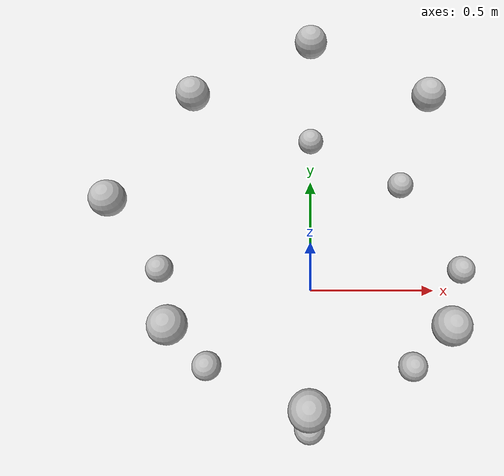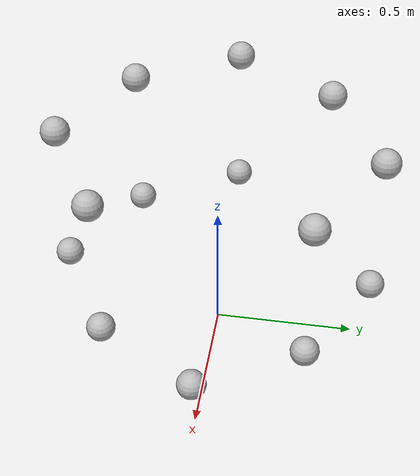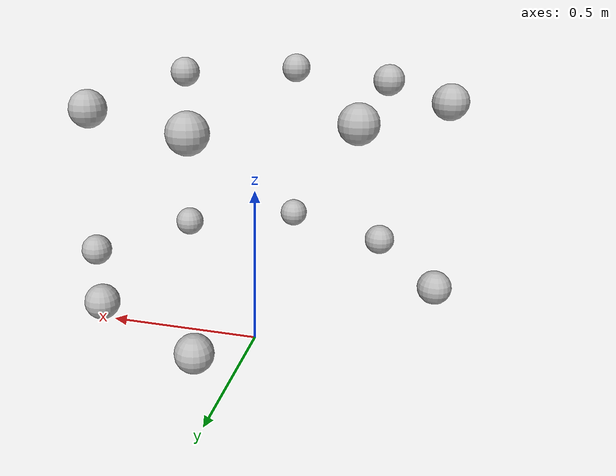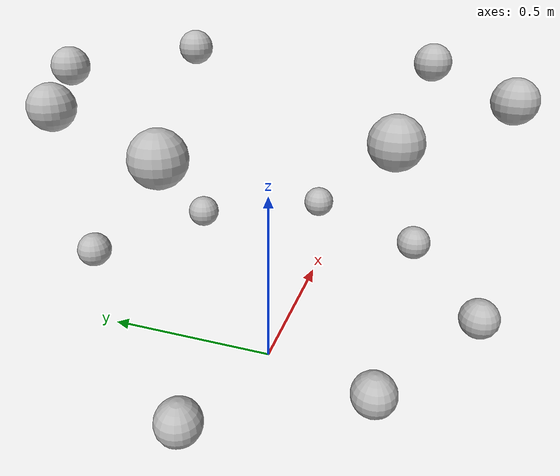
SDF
<?xml version="1.0" ?>
<sdf version="1.7">
  <world name="default">
    <!-- A model containing 14 spheres -->
    <model name="spheres">
      <static>true</static>

      <!-- Sphere 1 -->
      <link name="sphere_1">
        <pose>0.55 0 0.25 0 0 0</pose>
        <visual name="visual_sphere_1">
          <geometry>
            <sphere>
              <radius>0.05</radius>
            </sphere>
          </geometry>
        </visual>
      </link>

      <!-- Sphere 2 -->
      <link name="sphere_2">
        <pose>0.35 0.35 0.25 0 0 0</pose>
        <visual name="visual_sphere_2">
          <geometry>
            <sphere>
              <radius>0.05</radius>
            </sphere>
          </geometry>
        </visual>
      </link>

      <!-- Sphere 3 -->
      <link name="sphere_3">
        <pose>0 0.55 0.25 0 0 0</pose>
        <visual name="visual_sphere_3">
          <geometry>
            <sphere>
              <radius>0.05</radius>
            </sphere>
          </geometry>
        </visual>
      </link>

      <!-- Sphere 4 -->
      <link name="sphere_4">
        <pose>-0.55 0 0.25 0 0 0</pose>
        <visual name="visual_sphere_4">
          <geometry>
            <sphere>
              <radius>0.05</radius>
            </sphere>
          </geometry>
        </visual>
      </link>

      <!-- Sphere 5 -->
      <link name="sphere_5">
        <pose>-0.35 -0.35 0.25 0 0 0</pose>
        <visual name="visual_sphere_5">
          <geometry>
            <sphere>
              <radius>0.05</radius>
            </sphere>
          </geometry>
        </visual>
      </link>

      <!-- Sphere 6 -->
      <link name="sphere_6">
        <pose>0 -0.55 0.25 0 0 0</pose>
        <visual name="visual_sphere_6">
          <geometry>
            <sphere>
              <radius>0.05</radius>
            </sphere>
          </geometry>
        </visual>
      </link>

      <!-- Sphere 7 -->
      <link name="sphere_7">
        <pose>0.35 -0.35 0.25 0 0 0</pose>
        <visual name="visual_sphere_7">
          <geometry>
            <sphere>
              <radius>0.05</radius>
            </sphere>
          </geometry>
        </visual>
      </link>

      <!-- Sphere 8 -->
      <link name="sphere_8">
        <pose>0.35 0.35 0.8 0 0 0</pose>
        <visual name="visual_sphere_8">
          <geometry>
            <sphere>
              <radius>0.05</radius>
            </sphere>
          </geometry>
        </visual>
      </link>

      <!-- Sphere 9 -->
      <link name="sphere_9">
        <pose>0 0.55 0.8 0 0 0</pose>
        <visual name="visual_sphere_9">
          <geometry>
            <sphere>
              <radius>0.05</radius>
            </sphere>
          </geometry>
        </visual>
      </link>

      <!-- Sphere 10 -->
      <link name="sphere_10">
        <pose>-0.35 0.35 0.8 0 0 0</pose>
        <visual name="visual_sphere_10">
          <geometry>
            <sphere>
              <radius>0.05</radius>
            </sphere>
          </geometry>
        </visual>
      </link>

      <!-- Sphere 11 -->
      <link name="sphere_11">
        <pose>-0.55 0 0.8 0 0 0</pose>
        <visual name="visual_sphere_11">
          <geometry>
            <sphere>
              <radius>0.05</radius>
            </sphere>
          </geometry>
        </visual>
      </link>

      <!-- Sphere 12 -->
      <link name="sphere_12">
        <pose>-0.35 -0.35 0.8 0 0 0</pose>
        <visual name="visual_sphere_12">
          <geometry>
            <sphere>
              <radius>0.05</radius>
            </sphere>
          </geometry>
        </visual>
      </link>

      <!-- Sphere 13 -->
      <link name="sphere_13">
        <pose>0 -0.55 0.8 0 0 0</pose>
        <visual name="visual_sphere_13">
          <geometry>
            <sphere>
              <radius>0.05</radius>
            </sphere>
          </geometry>
        </visual>
      </link>

      <!-- Sphere 14 -->
      <link name="sphere_14">
        <pose>0.35 -0.35 0.8 0 0 0</pose>
        <visual name="visual_sphere_14">
          <geometry>
            <sphere>
              <radius>0.05</radius>
            </sphere>
          </geometry>
        </visual>
      </link>

    </model>

  </world>
</sdf>
